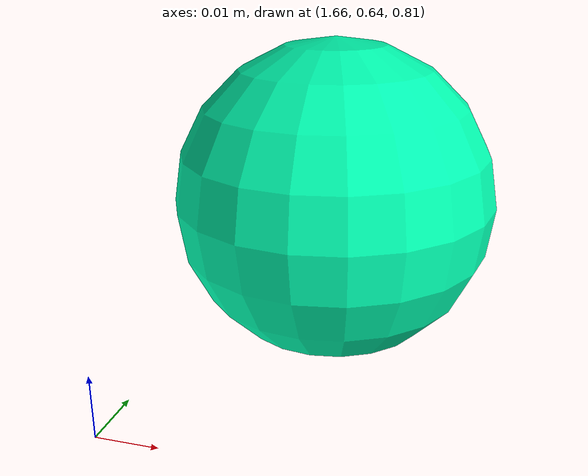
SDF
<?xml version='1.0'?>
<sdf version='1.7'>
  <model name='green_ball'>
    <pose>1.688410 0.669094 0.84 0.00 0.00 0.00</pose>
    <link name='link'>
      <inertial>
        <mass>0.01</mass>
        <inertia>
          <ixx>0.1</ixx>
          <ixy>0</ixy>
          <ixz>0</ixz>
          <iyy>0.1</iyy>
          <iyz>0</iyz>
          <izz>0.1</izz>
        </inertia>
        <pose>0 0 0 0 -0 0</pose>
      </inertial>
      <self_collide>0</self_collide>
      <enable_wind>0</enable_wind>
      <kinematic>0</kinematic>
      <pose>0 0 0 0 -0 0</pose>
      <gravity>1</gravity>
      <visual name='visual'>
        <geometry>
          <sphere>
            <radius>0.025</radius>
          </sphere>
        </geometry>
        <material>
          <script>
            <name>Gazebo/Grey</name>
            <uri>file://media/materials/scripts/gazebo.material</uri>
          </script>
          <shader type='pixel'>
            <normal_map>__default__</normal_map>
          </shader>
          <ambient>0 1 0.3 1</ambient>
          <diffuse>0 1 0.7 1</diffuse>
          <specular>0 1 0.01 1</specular>
          <emissive>0 1 0 1</emissive>
        </material>
        <pose>0 0 0 0 -0 0</pose>
        <transparency>0</transparency>
        <cast_shadows>1</cast_shadows>
      </visual>
      <collision name='collision'>
        <geometry>
          <sphere>
            <radius>0.025</radius>
          </sphere>
        </geometry>
        <surface>
          <friction>
            <ode>
              <mu>1.0</mu>
              <mu2>1.0</mu2>
            </ode>
          </friction>
          <bounce>
            <restitution_coefficient>0.8</restitution_coefficient>
            <threshold>0.01</threshold>
          </bounce>
          <contact>
            <ode>
              <soft_cfm>0.0001</soft_cfm>
              <soft_erp>0.5</soft_erp>
              <kp>50000</kp>
              <kd>50</kd>
              <max_vel>100.0</max_vel>
              <min_depth>0.01</min_depth>
            </ode>
          </contact>
        </surface>
      </collision>
    </link>
    <static>0</static>
    <allow_auto_disable>1</allow_auto_disable>
  </model>
</sdf>
